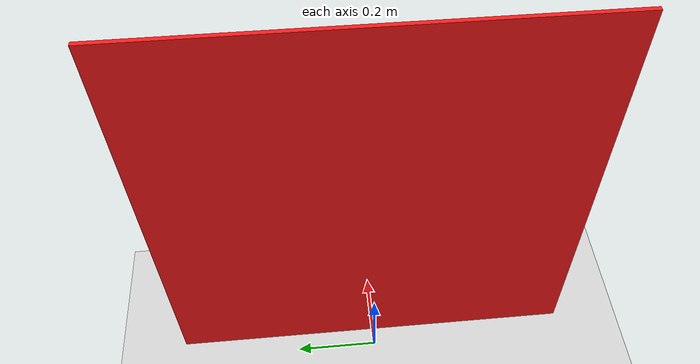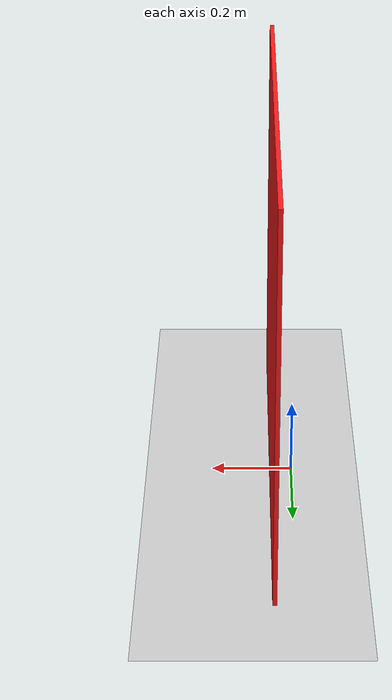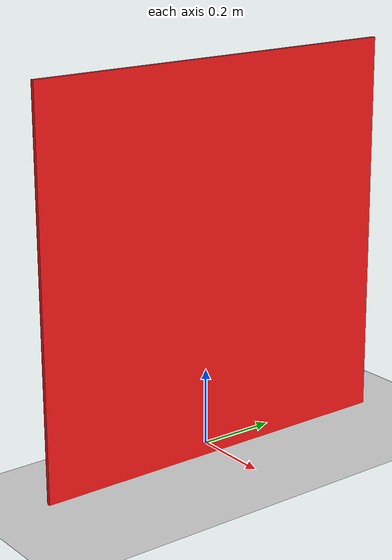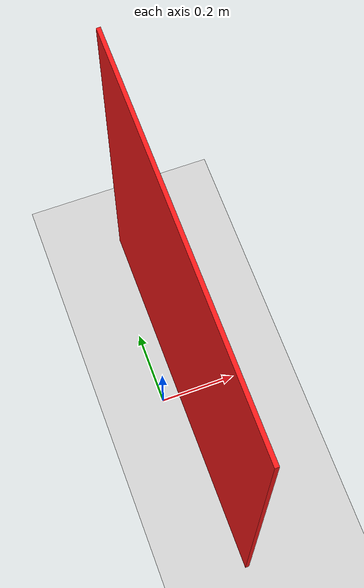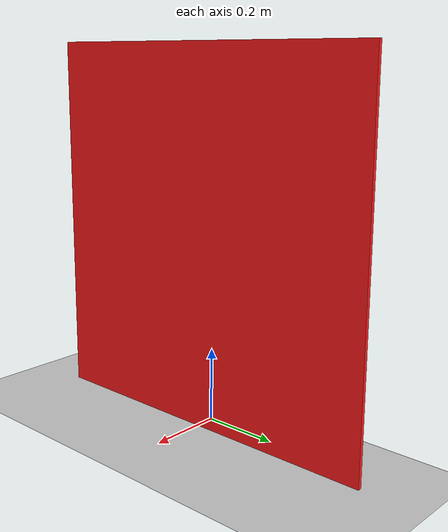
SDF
<?xml version="1.0" ?>
<sdf version="1.6">
  <world name="camera_c10_clipping">
    <scene>
      <ambient>0.7 0.7 0.7 1</ambient>
      <background>0.5 0.5 0.5 1</background>
    </scene>

    <include>
      <uri>model://sun</uri>
    </include>

    <include>
      <uri>model://ground_plane</uri>
    </include>

    <model name="clip_cube">
      <pose>0.05 0.0 0.5 0 0 0</pose>
      <static>false</static>
      <link name="link">
        <gravity>false</gravity>
        <collision name="collision">
          <geometry>
            <box><size>0.01 1.0 1.0</size></box>
          </geometry>
        </collision>
        <visual name="visual">
          <geometry>
            <box><size>0.01 1.0 1.0</size></box>
          </geometry>
          <material>
            <ambient>1.0 0.1 0.1 1</ambient>
            <diffuse>1.0 0.1 0.1 1</diffuse>
          </material>
        </visual>
      </link>
    </model>
  </world>
</sdf>
